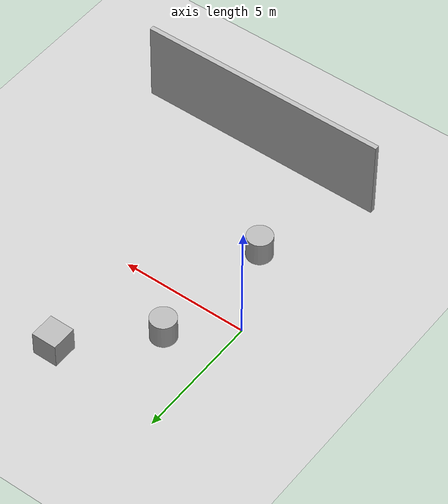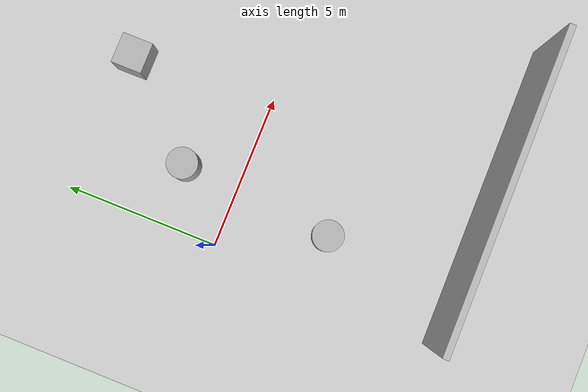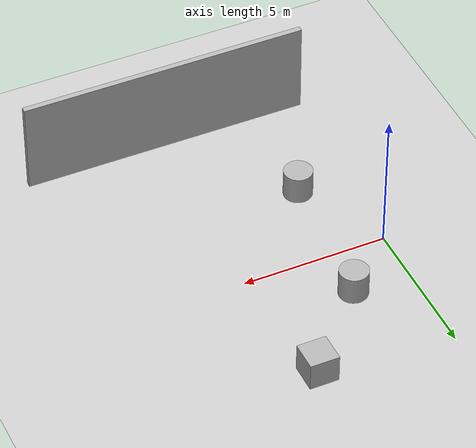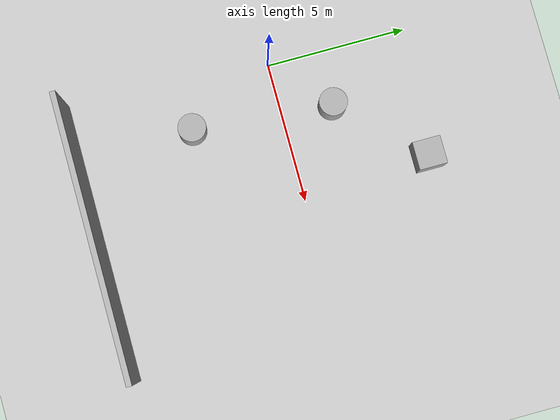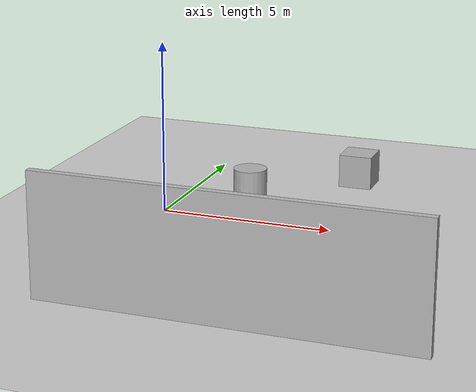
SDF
<sdf version="1.10">
 <world name="empty">
  <physics name="1ms" type="ignored">
   <max_step_size>0.001</max_step_size>
   <real_time_factor>1</real_time_factor>
   <real_time_update_rate>1000</real_time_update_rate>
  </physics>
  <plugin name="gz::sim::systems::Physics" filename="gz-sim-physics-system"/>
  <plugin name="gz::sim::systems::UserCommands" filename="gz-sim-user-commands-system"/>
  <plugin name="gz::sim::systems::SceneBroadcaster" filename="gz-sim-scene-broadcaster-system"/>
  <plugin name="gz::sim::systems::Contact" filename="gz-sim-contact-system"/>
  <gravity>0 0 -9.8000000000000007</gravity>
  <magnetic_field>5.5644999999999998e-06 2.2875799999999999e-05 -4.2388400000000002e-05</magnetic_field>
  <atmosphere type="adiabatic"/>
  <scene>
   <ambient>0.400000006 0.400000006 0.400000006 1</ambient>
   <background>0.699999988 0.699999988 0.699999988 1</background>
   <shadows>true</shadows>
  </scene>
  <model name="ground_plane">
   <static>true</static>
   <link name="link">
    <collision name="collision">
     <geometry><plane><normal>0 0 1</normal><size>100 100</size></plane></geometry>
    </collision>
    <visual name="visual">
     <geometry><plane><normal>0 0 1</normal><size>100 100</size></plane></geometry>
     <material>
      <ambient>0.800000012 0.800000012 0.800000012 1</ambient>
      <diffuse>0.800000012 0.800000012 0.800000012 1</diffuse>
      <specular>0.800000012 0.800000012 0.800000012 1</specular>
     </material>
    </visual>
    <inertial>
     <mass>1</mass>
     <inertia><ixx>1</ixx><ixy>0</ixy><ixz>0</ixz><iyy>1</iyy><iyz>0</iyz><izz>1</izz></inertia>
    </inertial>
   </link>
  </model>
  <model name="cylinder">
   <pose>2 1.8046145439147949 0.49999899681693183 3.2315746627902076e-21 1.8327518900330894e-23 -5.8771801306807734e-23</pose>
   <link name="cylinder_link">
    <inertial>
     <inertia>
      <ixx>0.14580000000000001</ixx>
      <ixy>0</ixy>
      <ixz>0</ixz>
      <iyy>0.14580000000000001</iyy>
      <iyz>0</iyz>
      <izz>0.125</izz>
     </inertia>
     <mass>1</mass>
    </inertial>
    <collision name="cylinder_collision">
     <geometry><cylinder><radius>0.5</radius><length>1</length></cylinder></geometry>
    </collision>
    <visual name="cylinder_visual">
     <geometry><cylinder><radius>0.5</radius><length>1</length></cylinder></geometry>
     <material>
      <ambient>0.300000012 0.300000012 0.300000012 1</ambient>
      <diffuse>0.699999988 0.699999988 0.699999988 1</diffuse>
      <specular>1 1 1 1</specular>
     </material>
    </visual>
   </link>
   <static>false</static>
  </model>
  <model name="cylinder_0">
   <pose>1.5871200000000001 -3.1785899999999998 0.49999900000000003 1.12354e-19 1.97774e-19 1.9902300000000001e-20</pose>
   <link name="cylinder_link">
    <inertial>
     <inertia>
      <ixx>0.14580000000000001</ixx>
      <ixy>0</ixy>
      <ixz>0</ixz>
      <iyy>0.14580000000000001</iyy>
      <iyz>0</iyz>
      <izz>0.125</izz>
     </inertia>
     <mass>1</mass>
    </inertial>
    <collision name="cylinder_collision">
     <geometry><cylinder><radius>0.5</radius><length>1</length></cylinder></geometry>
    </collision>
    <visual name="cylinder_visual">
     <geometry><cylinder><radius>0.5</radius><length>1</length></cylinder></geometry>
     <material>
      <ambient>0.300000012 0.300000012 0.300000012 1</ambient>
      <diffuse>0.699999988 0.699999988 0.699999988 1</diffuse>
      <specular>1 1 1 1</specular>
     </material>
    </visual>
   </link>
   <static>false</static>
  </model>
  <model name="box">
   <pose>4.5984499999999997 4.5515400000000001 0.5 6.2287699999999997e-22 9.3279700000000006e-22 -3.63155e-22</pose>
   <link name="box_link">
    <inertial>
     <inertia><ixx>0.16666</ixx><ixy>0</ixy><ixz>0</ixz><iyy>0.16666</iyy><iyz>0</iyz><izz>0.16666</izz></inertia>
     <mass>1</mass>
    </inertial>
    <collision name="box_collision"><geometry><box><size>1 1 1</size></box></geometry></collision>
    <visual name="box_visual">
     <geometry><box><size>1 1 1</size></box></geometry>
     <material>
      <ambient>0.300000012 0.300000012 0.300000012 1</ambient>
      <diffuse>0.699999988 0.699999988 0.699999988 1</diffuse>
      <specular>1 1 1 1</specular>
     </material>
    </visual>
   </link>
   <static>false</static>
  </model>
  <model name="cutout_wall">
   <static>true</static>
   <link name="link">
    <pose>0 0 1.3999999999999999 0 0 0</pose>
    <collision name="collision">
     <geometry><box><size>10 0.20000000000000001 3.7999999999999998</size></box></geometry>
     <surface>
      <contact>
       <collide_without_contact>true</collide_without_contact>
       <collide_without_contact_bitmask>2</collide_without_contact_bitmask>
      </contact>
     </surface>
    </collision>
    <visual name="visual">
     <cast_shadows>false</cast_shadows>
     <geometry><box><size>10 0.20000000000000001 3.7999999999999998</size></box></geometry>
     <material>
      <script>
       <uri>https://fuel.gazebosim.org/1.0/openrobotics/models/cutout wall/2/files/materials/scripts</uri>
       <uri>https://fuel.gazebosim.org/1.0/openrobotics/models/cutout wall/2/files/materials/textures</uri>
       <name>drc_practice/cutout_wall</name>
      </script>
     </material>
    </visual>
    <sensor name="mud_contact" type="contact">
     <always_on>true</always_on>
     <update_rate>1000</update_rate>
     <contact><collision>collision</collision><topic>__default_topic__</topic></contact>
    </sensor>
    <inertial>
     <mass>1</mass>
     <inertia><ixx>1</ixx><ixy>0</ixy><ixz>0</ixz><iyy>1</iyy><iyz>0</iyz><izz>1</izz></inertia>
    </inertial>
   </link>
   <plugin name="gazebo_mud" filename="libMudPlugin.so">
    <contact_sensor_name>link/mud_contact</contact_sensor_name>
    <stiffness>0.0</stiffness>
    <damping>40.0</damping>
    <contact_surface_bitmask>2</contact_surface_bitmask>
    <link_name>drill::link</link_name>
   </plugin>
   <pose>4.5751585960388184 -7.2939901351928711 0 0 0 0</pose>
  </model>
  <light name="sun" type="directional">
   <pose>0 0 10 0 0 0</pose>
   <intensity>1</intensity>
   <direction>-0.5 0.10000000000000001 -0.90000000000000002</direction>
   <diffuse>0.800000012 0.800000012 0.800000012 1</diffuse>
   <specular>0.200000003 0.200000003 0.200000003 1</specular>
   <attenuation>
    <range>1000</range>
    <linear>0.0099999997764825821</linear>
    <constant>0.89999997615814209</constant>
    <quadratic>0.0010000000474974513</quadratic>
   </attenuation>
   <spot><inner_angle>0</inner_angle><outer_angle>0</outer_angle><falloff>0</falloff></spot>
  </light>
 </world>
</sdf>
